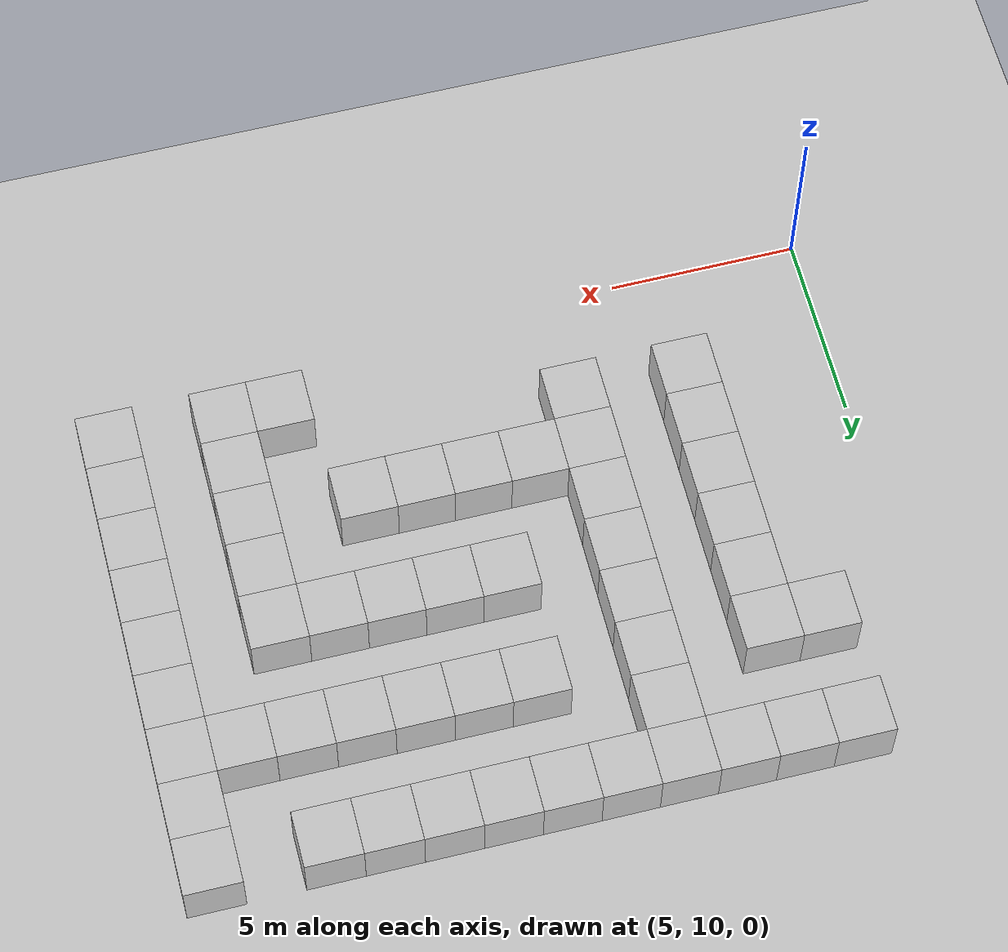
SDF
<sdf version="1.9">
 <world name="maze_world">
  <include><uri>https://fuel.gazebosim.org/1.0/OpenRobotics/models/Sun</uri></include>
  <include><uri>https://fuel.gazebosim.org/1.0/OpenRobotics/models/Ground Plane</uri></include>
  <model name="wall_13_8">
   <static>true</static>
   <pose>19.5 12 0.75 0 0 0</pose>
   <link name="link">
    <collision name="collision"><geometry><box><size>1.5 1.5 1.5</size></box></geometry></collision>
    <visual name="visual">
     <geometry><box><size>1.5 1.5 1.5</size></box></geometry>
     <material>
      <ambient>0.8 0.8 0.8 1</ambient>
      <diffuse>0.8 0.8 0.8 1</diffuse>
      <pbr>
       <metal>
        <albedo_map>file:///home/max/Repos/DHBW-Robotik/maze_runner_ws/src/maze_runner_gazebo/textures/simple_box.png</albedo_map>
        <roughness>0.9</roughness>
       </metal>
      </pbr>
     </material>
    </visual>
   </link>
  </model>
  <model name="wall_14_8">
   <static>true</static>
   <pose>21 12 0.75 0 0 0</pose>
   <link name="link">
    <collision name="collision"><geometry><box><size>1.5 1.5 1.5</size></box></geometry></collision>
    <visual name="visual">
     <geometry><box><size>1.5 1.5 1.5</size></box></geometry>
     <material>
      <ambient>0.8 0.8 0.8 1</ambient>
      <diffuse>0.8 0.8 0.8 1</diffuse>
      <pbr>
       <metal>
        <albedo_map>file:///home/max/Repos/DHBW-Robotik/maze_runner_ws/src/maze_runner_gazebo/textures/simple_box.png</albedo_map>
        <roughness>0.9</roughness>
       </metal>
      </pbr>
     </material>
    </visual>
   </link>
  </model>
  <model name="wall_16_8">
   <static>true</static>
   <pose>24 12 0.75 0 0 0</pose>
   <link name="link">
    <collision name="collision"><geometry><box><size>1.5 1.5 1.5</size></box></geometry></collision>
    <visual name="visual">
     <geometry><box><size>1.5 1.5 1.5</size></box></geometry>
     <material>
      <ambient>0.8 0.8 0.8 1</ambient>
      <diffuse>0.8 0.8 0.8 1</diffuse>
      <pbr>
       <metal>
        <albedo_map>file:///home/max/Repos/DHBW-Robotik/maze_runner_ws/src/maze_runner_gazebo/textures/simple_box.png</albedo_map>
        <roughness>0.9</roughness>
       </metal>
      </pbr>
     </material>
    </visual>
   </link>
  </model>
  <model name="wall_6_9">
   <static>true</static>
   <pose>9 13.5 0.75 0 0 0</pose>
   <link name="link">
    <collision name="collision"><geometry><box><size>1.5 1.5 1.5</size></box></geometry></collision>
    <visual name="visual">
     <geometry><box><size>1.5 1.5 1.5</size></box></geometry>
     <material>
      <ambient>0.8 0.8 0.8 1</ambient>
      <diffuse>0.8 0.8 0.8 1</diffuse>
      <pbr>
       <metal>
        <albedo_map>file:///home/max/Repos/DHBW-Robotik/maze_runner_ws/src/maze_runner_gazebo/textures/simple_box.png</albedo_map>
        <roughness>0.9</roughness>
       </metal>
      </pbr>
     </material>
    </visual>
   </link>
  </model>
  <model name="wall_8_9">
   <static>true</static>
   <pose>12 13.5 0.75 0 0 0</pose>
   <link name="link">
    <collision name="collision"><geometry><box><size>1.5 1.5 1.5</size></box></geometry></collision>
    <visual name="visual">
     <geometry><box><size>1.5 1.5 1.5</size></box></geometry>
     <material>
      <ambient>0.8 0.8 0.8 1</ambient>
      <diffuse>0.8 0.8 0.8 1</diffuse>
      <pbr>
       <metal>
        <albedo_map>file:///home/max/Repos/DHBW-Robotik/maze_runner_ws/src/maze_runner_gazebo/textures/simple_box.png</albedo_map>
        <roughness>0.9</roughness>
       </metal>
      </pbr>
     </material>
    </visual>
   </link>
  </model>
  <model name="wall_14_9">
   <static>true</static>
   <pose>21 13.5 0.75 0 0 0</pose>
   <link name="link">
    <collision name="collision"><geometry><box><size>1.5 1.5 1.5</size></box></geometry></collision>
    <visual name="visual">
     <geometry><box><size>1.5 1.5 1.5</size></box></geometry>
     <material>
      <ambient>0.8 0.8 0.8 1</ambient>
      <diffuse>0.8 0.8 0.8 1</diffuse>
      <pbr>
       <metal>
        <albedo_map>file:///home/max/Repos/DHBW-Robotik/maze_runner_ws/src/maze_runner_gazebo/textures/simple_box.png</albedo_map>
        <roughness>0.9</roughness>
       </metal>
      </pbr>
     </material>
    </visual>
   </link>
  </model>
  <model name="wall_16_9">
   <static>true</static>
   <pose>24 13.5 0.75 0 0 0</pose>
   <link name="link">
    <collision name="collision"><geometry><box><size>1.5 1.5 1.5</size></box></geometry></collision>
    <visual name="visual">
     <geometry><box><size>1.5 1.5 1.5</size></box></geometry>
     <material>
      <ambient>0.8 0.8 0.8 1</ambient>
      <diffuse>0.8 0.8 0.8 1</diffuse>
      <pbr>
       <metal>
        <albedo_map>file:///home/max/Repos/DHBW-Robotik/maze_runner_ws/src/maze_runner_gazebo/textures/simple_box.png</albedo_map>
        <roughness>0.9</roughness>
       </metal>
      </pbr>
     </material>
    </visual>
   </link>
  </model>
  <model name="wall_6_10">
   <static>true</static>
   <pose>9 15 0.75 0 0 0</pose>
   <link name="link">
    <collision name="collision"><geometry><box><size>1.5 1.5 1.5</size></box></geometry></collision>
    <visual name="visual">
     <geometry><box><size>1.5 1.5 1.5</size></box></geometry>
     <material>
      <ambient>0.8 0.8 0.8 1</ambient>
      <diffuse>0.8 0.8 0.8 1</diffuse>
      <pbr>
       <metal>
        <albedo_map>file:///home/max/Repos/DHBW-Robotik/maze_runner_ws/src/maze_runner_gazebo/textures/simple_box.png</albedo_map>
        <roughness>0.9</roughness>
       </metal>
      </pbr>
     </material>
    </visual>
   </link>
  </model>
  <model name="wall_8_10">
   <static>true</static>
   <pose>12 15 0.75 0 0 0</pose>
   <link name="link">
    <collision name="collision"><geometry><box><size>1.5 1.5 1.5</size></box></geometry></collision>
    <visual name="visual">
     <geometry><box><size>1.5 1.5 1.5</size></box></geometry>
     <material>
      <ambient>0.8 0.8 0.8 1</ambient>
      <diffuse>0.8 0.8 0.8 1</diffuse>
      <pbr>
       <metal>
        <albedo_map>file:///home/max/Repos/DHBW-Robotik/maze_runner_ws/src/maze_runner_gazebo/textures/simple_box.png</albedo_map>
        <roughness>0.9</roughness>
       </metal>
      </pbr>
     </material>
    </visual>
   </link>
  </model>
  <model name="wall_9_10">
   <static>true</static>
   <pose>13.5 15 0.75 0 0 0</pose>
   <link name="link">
    <collision name="collision"><geometry><box><size>1.5 1.5 1.5</size></box></geometry></collision>
    <visual name="visual">
     <geometry><box><size>1.5 1.5 1.5</size></box></geometry>
     <material>
      <ambient>0.8 0.8 0.8 1</ambient>
      <diffuse>0.8 0.8 0.8 1</diffuse>
      <pbr>
       <metal>
        <albedo_map>file:///home/max/Repos/DHBW-Robotik/maze_runner_ws/src/maze_runner_gazebo/textures/simple_box.png</albedo_map>
        <roughness>0.9</roughness>
       </metal>
      </pbr>
     </material>
    </visual>
   </link>
  </model>
  <model name="wall_10_10">
   <static>true</static>
   <pose>15 15 0.75 0 0 0</pose>
   <link name="link">
    <collision name="collision"><geometry><box><size>1.5 1.5 1.5</size></box></geometry></collision>
    <visual name="visual">
     <geometry><box><size>1.5 1.5 1.5</size></box></geometry>
     <material>
      <ambient>0.8 0.8 0.8 1</ambient>
      <diffuse>0.8 0.8 0.8 1</diffuse>
      <pbr>
       <metal>
        <albedo_map>file:///home/max/Repos/DHBW-Robotik/maze_runner_ws/src/maze_runner_gazebo/textures/simple_box.png</albedo_map>
        <roughness>0.9</roughness>
       </metal>
      </pbr>
     </material>
    </visual>
   </link>
  </model>
  <model name="wall_11_10">
   <static>true</static>
   <pose>16.5 15 0.75 0 0 0</pose>
   <link name="link">
    <collision name="collision"><geometry><box><size>1.5 1.5 1.5</size></box></geometry></collision>
    <visual name="visual">
     <geometry><box><size>1.5 1.5 1.5</size></box></geometry>
     <material>
      <ambient>0.8 0.8 0.8 1</ambient>
      <diffuse>0.8 0.8 0.8 1</diffuse>
      <pbr>
       <metal>
        <albedo_map>file:///home/max/Repos/DHBW-Robotik/maze_runner_ws/src/maze_runner_gazebo/textures/simple_box.png</albedo_map>
        <roughness>0.9</roughness>
       </metal>
      </pbr>
     </material>
    </visual>
   </link>
  </model>
  <model name="wall_12_10">
   <static>true</static>
   <pose>18 15 0.75 0 0 0</pose>
   <link name="link">
    <collision name="collision"><geometry><box><size>1.5 1.5 1.5</size></box></geometry></collision>
    <visual name="visual">
     <geometry><box><size>1.5 1.5 1.5</size></box></geometry>
     <material>
      <ambient>0.8 0.8 0.8 1</ambient>
      <diffuse>0.8 0.8 0.8 1</diffuse>
      <pbr>
       <metal>
        <albedo_map>file:///home/max/Repos/DHBW-Robotik/maze_runner_ws/src/maze_runner_gazebo/textures/simple_box.png</albedo_map>
        <roughness>0.9</roughness>
       </metal>
      </pbr>
     </material>
    </visual>
   </link>
  </model>
  <model name="wall_14_10">
   <static>true</static>
   <pose>21 15 0.75 0 0 0</pose>
   <link name="link">
    <collision name="collision"><geometry><box><size>1.5 1.5 1.5</size></box></geometry></collision>
    <visual name="visual">
     <geometry><box><size>1.5 1.5 1.5</size></box></geometry>
     <material>
      <ambient>0.8 0.8 0.8 1</ambient>
      <diffuse>0.8 0.8 0.8 1</diffuse>
      <pbr>
       <metal>
        <albedo_map>file:///home/max/Repos/DHBW-Robotik/maze_runner_ws/src/maze_runner_gazebo/textures/simple_box.png</albedo_map>
        <roughness>0.9</roughness>
       </metal>
      </pbr>
     </material>
    </visual>
   </link>
  </model>
  <model name="wall_16_10">
   <static>true</static>
   <pose>24 15 0.75 0 0 0</pose>
   <link name="link">
    <collision name="collision"><geometry><box><size>1.5 1.5 1.5</size></box></geometry></collision>
    <visual name="visual">
     <geometry><box><size>1.5 1.5 1.5</size></box></geometry>
     <material>
      <ambient>0.8 0.8 0.8 1</ambient>
      <diffuse>0.8 0.8 0.8 1</diffuse>
      <pbr>
       <metal>
        <albedo_map>file:///home/max/Repos/DHBW-Robotik/maze_runner_ws/src/maze_runner_gazebo/textures/simple_box.png</albedo_map>
        <roughness>0.9</roughness>
       </metal>
      </pbr>
     </material>
    </visual>
   </link>
  </model>
  <model name="wall_6_11">
   <static>true</static>
   <pose>9 16.5 0.75 0 0 0</pose>
   <link name="link">
    <collision name="collision"><geometry><box><size>1.5 1.5 1.5</size></box></geometry></collision>
    <visual name="visual">
     <geometry><box><size>1.5 1.5 1.5</size></box></geometry>
     <material>
      <ambient>0.8 0.8 0.8 1</ambient>
      <diffuse>0.8 0.8 0.8 1</diffuse>
      <pbr>
       <metal>
        <albedo_map>file:///home/max/Repos/DHBW-Robotik/maze_runner_ws/src/maze_runner_gazebo/textures/simple_box.png</albedo_map>
        <roughness>0.9</roughness>
       </metal>
      </pbr>
     </material>
    </visual>
   </link>
  </model>
  <model name="wall_8_11">
   <static>true</static>
   <pose>12 16.5 0.75 0 0 0</pose>
   <link name="link">
    <collision name="collision"><geometry><box><size>1.5 1.5 1.5</size></box></geometry></collision>
    <visual name="visual">
     <geometry><box><size>1.5 1.5 1.5</size></box></geometry>
     <material>
      <ambient>0.8 0.8 0.8 1</ambient>
      <diffuse>0.8 0.8 0.8 1</diffuse>
      <pbr>
       <metal>
        <albedo_map>file:///home/max/Repos/DHBW-Robotik/maze_runner_ws/src/maze_runner_gazebo/textures/simple_box.png</albedo_map>
        <roughness>0.9</roughness>
       </metal>
      </pbr>
     </material>
    </visual>
   </link>
  </model>
  <model name="wall_14_11">
   <static>true</static>
   <pose>21 16.5 0.75 0 0 0</pose>
   <link name="link">
    <collision name="collision"><geometry><box><size>1.5 1.5 1.5</size></box></geometry></collision>
    <visual name="visual">
     <geometry><box><size>1.5 1.5 1.5</size></box></geometry>
     <material>
      <ambient>0.8 0.8 0.8 1</ambient>
      <diffuse>0.8 0.8 0.8 1</diffuse>
      <pbr>
       <metal>
        <albedo_map>file:///home/max/Repos/DHBW-Robotik/maze_runner_ws/src/maze_runner_gazebo/textures/simple_box.png</albedo_map>
        <roughness>0.9</roughness>
       </metal>
      </pbr>
     </material>
    </visual>
   </link>
  </model>
  <model name="wall_16_11">
   <static>true</static>
   <pose>24 16.5 0.75 0 0 0</pose>
   <link name="link">
    <collision name="collision"><geometry><box><size>1.5 1.5 1.5</size></box></geometry></collision>
    <visual name="visual">
     <geometry><box><size>1.5 1.5 1.5</size></box></geometry>
     <material>
      <ambient>0.8 0.8 0.8 1</ambient>
      <diffuse>0.8 0.8 0.8 1</diffuse>
      <pbr>
       <metal>
        <albedo_map>file:///home/max/Repos/DHBW-Robotik/maze_runner_ws/src/maze_runner_gazebo/textures/simple_box.png</albedo_map>
        <roughness>0.9</roughness>
       </metal>
      </pbr>
     </material>
    </visual>
   </link>
  </model>
  <model name="wall_6_12">
   <static>true</static>
   <pose>9 18 0.75 0 0 0</pose>
   <link name="link">
    <collision name="collision"><geometry><box><size>1.5 1.5 1.5</size></box></geometry></collision>
    <visual name="visual">
     <geometry><box><size>1.5 1.5 1.5</size></box></geometry>
     <material>
      <ambient>0.8 0.8 0.8 1</ambient>
      <diffuse>0.8 0.8 0.8 1</diffuse>
      <pbr>
       <metal>
        <albedo_map>file:///home/max/Repos/DHBW-Robotik/maze_runner_ws/src/maze_runner_gazebo/textures/simple_box.png</albedo_map>
        <roughness>0.9</roughness>
       </metal>
      </pbr>
     </material>
    </visual>
   </link>
  </model>
  <model name="wall_8_12">
   <static>true</static>
   <pose>12 18 0.75 0 0 0</pose>
   <link name="link">
    <collision name="collision"><geometry><box><size>1.5 1.5 1.5</size></box></geometry></collision>
    <visual name="visual">
     <geometry><box><size>1.5 1.5 1.5</size></box></geometry>
     <material>
      <ambient>0.8 0.8 0.8 1</ambient>
      <diffuse>0.8 0.8 0.8 1</diffuse>
      <pbr>
       <metal>
        <albedo_map>file:///home/max/Repos/DHBW-Robotik/maze_runner_ws/src/maze_runner_gazebo/textures/simple_box.png</albedo_map>
        <roughness>0.9</roughness>
       </metal>
      </pbr>
     </material>
    </visual>
   </link>
  </model>
  <model name="wall_10_12">
   <static>true</static>
   <pose>15 18 0.75 0 0 0</pose>
   <link name="link">
    <collision name="collision"><geometry><box><size>1.5 1.5 1.5</size></box></geometry></collision>
    <visual name="visual">
     <geometry><box><size>1.5 1.5 1.5</size></box></geometry>
     <material>
      <ambient>0.8 0.8 0.8 1</ambient>
      <diffuse>0.8 0.8 0.8 1</diffuse>
      <pbr>
       <metal>
        <albedo_map>file:///home/max/Repos/DHBW-Robotik/maze_runner_ws/src/maze_runner_gazebo/textures/simple_box.png</albedo_map>
        <roughness>0.9</roughness>
       </metal>
      </pbr>
     </material>
    </visual>
   </link>
  </model>
  <model name="wall_11_12">
   <static>true</static>
   <pose>16.5 18 0.75 0 0 0</pose>
   <link name="link">
    <collision name="collision"><geometry><box><size>1.5 1.5 1.5</size></box></geometry></collision>
    <visual name="visual">
     <geometry><box><size>1.5 1.5 1.5</size></box></geometry>
     <material>
      <ambient>0.8 0.8 0.8 1</ambient>
      <diffuse>0.8 0.8 0.8 1</diffuse>
      <pbr>
       <metal>
        <albedo_map>file:///home/max/Repos/DHBW-Robotik/maze_runner_ws/src/maze_runner_gazebo/textures/simple_box.png</albedo_map>
        <roughness>0.9</roughness>
       </metal>
      </pbr>
     </material>
    </visual>
   </link>
  </model>
  <model name="wall_12_12">
   <static>true</static>
   <pose>18 18 0.75 0 0 0</pose>
   <link name="link">
    <collision name="collision"><geometry><box><size>1.5 1.5 1.5</size></box></geometry></collision>
    <visual name="visual">
     <geometry><box><size>1.5 1.5 1.5</size></box></geometry>
     <material>
      <ambient>0.8 0.8 0.8 1</ambient>
      <diffuse>0.8 0.8 0.8 1</diffuse>
      <pbr>
       <metal>
        <albedo_map>file:///home/max/Repos/DHBW-Robotik/maze_runner_ws/src/maze_runner_gazebo/textures/simple_box.png</albedo_map>
        <roughness>0.9</roughness>
       </metal>
      </pbr>
     </material>
    </visual>
   </link>
  </model>
  <model name="wall_13_12">
   <static>true</static>
   <pose>19.5 18 0.75 0 0 0</pose>
   <link name="link">
    <collision name="collision"><geometry><box><size>1.5 1.5 1.5</size></box></geometry></collision>
    <visual name="visual">
     <geometry><box><size>1.5 1.5 1.5</size></box></geometry>
     <material>
      <ambient>0.8 0.8 0.8 1</ambient>
      <diffuse>0.8 0.8 0.8 1</diffuse>
      <pbr>
       <metal>
        <albedo_map>file:///home/max/Repos/DHBW-Robotik/maze_runner_ws/src/maze_runner_gazebo/textures/simple_box.png</albedo_map>
        <roughness>0.9</roughness>
       </metal>
      </pbr>
     </material>
    </visual>
   </link>
  </model>
  <model name="wall_14_12">
   <static>true</static>
   <pose>21 18 0.75 0 0 0</pose>
   <link name="link">
    <collision name="collision"><geometry><box><size>1.5 1.5 1.5</size></box></geometry></collision>
    <visual name="visual">
     <geometry><box><size>1.5 1.5 1.5</size></box></geometry>
     <material>
      <ambient>0.8 0.8 0.8 1</ambient>
      <diffuse>0.8 0.8 0.8 1</diffuse>
      <pbr>
       <metal>
        <albedo_map>file:///home/max/Repos/DHBW-Robotik/maze_runner_ws/src/maze_runner_gazebo/textures/simple_box.png</albedo_map>
        <roughness>0.9</roughness>
       </metal>
      </pbr>
     </material>
    </visual>
   </link>
  </model>
  <model name="wall_16_12">
   <static>true</static>
   <pose>24 18 0.75 0 0 0</pose>
   <link name="link">
    <collision name="collision"><geometry><box><size>1.5 1.5 1.5</size></box></geometry></collision>
    <visual name="visual">
     <geometry><box><size>1.5 1.5 1.5</size></box></geometry>
     <material>
      <ambient>0.8 0.8 0.8 1</ambient>
      <diffuse>0.8 0.8 0.8 1</diffuse>
      <pbr>
       <metal>
        <albedo_map>file:///home/max/Repos/DHBW-Robotik/maze_runner_ws/src/maze_runner_gazebo/textures/simple_box.png</albedo_map>
        <roughness>0.9</roughness>
       </metal>
      </pbr>
     </material>
    </visual>
   </link>
  </model>
  <model name="wall_6_13">
   <static>true</static>
   <pose>9 19.5 0.75 0 0 0</pose>
   <link name="link">
    <collision name="collision"><geometry><box><size>1.5 1.5 1.5</size></box></geometry></collision>
    <visual name="visual">
     <geometry><box><size>1.5 1.5 1.5</size></box></geometry>
     <material>
      <ambient>0.8 0.8 0.8 1</ambient>
      <diffuse>0.8 0.8 0.8 1</diffuse>
      <pbr>
       <metal>
        <albedo_map>file:///home/max/Repos/DHBW-Robotik/maze_runner_ws/src/maze_runner_gazebo/textures/simple_box.png</albedo_map>
        <roughness>0.9</roughness>
       </metal>
      </pbr>
     </material>
    </visual>
   </link>
  </model>
  <model name="wall_8_13">
   <static>true</static>
   <pose>12 19.5 0.75 0 0 0</pose>
   <link name="link">
    <collision name="collision"><geometry><box><size>1.5 1.5 1.5</size></box></geometry></collision>
    <visual name="visual">
     <geometry><box><size>1.5 1.5 1.5</size></box></geometry>
     <material>
      <ambient>0.8 0.8 0.8 1</ambient>
      <diffuse>0.8 0.8 0.8 1</diffuse>
      <pbr>
       <metal>
        <albedo_map>file:///home/max/Repos/DHBW-Robotik/maze_runner_ws/src/maze_runner_gazebo/textures/simple_box.png</albedo_map>
        <roughness>0.9</roughness>
       </metal>
      </pbr>
     </material>
    </visual>
   </link>
  </model>
  <model name="wall_16_13">
   <static>true</static>
   <pose>24 19.5 0.75 0 0 0</pose>
   <link name="link">
    <collision name="collision"><geometry><box><size>1.5 1.5 1.5</size></box></geometry></collision>
    <visual name="visual">
     <geometry><box><size>1.5 1.5 1.5</size></box></geometry>
     <material>
      <ambient>0.8 0.8 0.8 1</ambient>
      <diffuse>0.8 0.8 0.8 1</diffuse>
      <pbr>
       <metal>
        <albedo_map>file:///home/max/Repos/DHBW-Robotik/maze_runner_ws/src/maze_runner_gazebo/textures/simple_box.png</albedo_map>
        <roughness>0.9</roughness>
       </metal>
      </pbr>
     </material>
    </visual>
   </link>
  </model>
  <model name="wall_5_14">
   <static>true</static>
   <pose>7.5 21 0.75 0 0 0</pose>
   <link name="link">
    <collision name="collision"><geometry><box><size>1.5 1.5 1.5</size></box></geometry></collision>
    <visual name="visual">
     <geometry><box><size>1.5 1.5 1.5</size></box></geometry>
     <material>
      <ambient>0.8 0.8 0.8 1</ambient>
      <diffuse>0.8 0.8 0.8 1</diffuse>
      <pbr>
       <metal>
        <albedo_map>file:///home/max/Repos/DHBW-Robotik/maze_runner_ws/src/maze_runner_gazebo/textures/simple_box.png</albedo_map>
        <roughness>0.9</roughness>
       </metal>
      </pbr>
     </material>
    </visual>
   </link>
  </model>
  <model name="wall_6_14">
   <static>true</static>
   <pose>9 21 0.75 0 0 0</pose>
   <link name="link">
    <collision name="collision"><geometry><box><size>1.5 1.5 1.5</size></box></geometry></collision>
    <visual name="visual">
     <geometry><box><size>1.5 1.5 1.5</size></box></geometry>
     <material>
      <ambient>0.8 0.8 0.8 1</ambient>
      <diffuse>0.8 0.8 0.8 1</diffuse>
      <pbr>
       <metal>
        <albedo_map>file:///home/max/Repos/DHBW-Robotik/maze_runner_ws/src/maze_runner_gazebo/textures/simple_box.png</albedo_map>
        <roughness>0.9</roughness>
       </metal>
      </pbr>
     </material>
    </visual>
   </link>
  </model>
  <model name="wall_8_14">
   <static>true</static>
   <pose>12 21 0.75 0 0 0</pose>
   <link name="link">
    <collision name="collision"><geometry><box><size>1.5 1.5 1.5</size></box></geometry></collision>
    <visual name="visual">
     <geometry><box><size>1.5 1.5 1.5</size></box></geometry>
     <material>
      <ambient>0.8 0.8 0.8 1</ambient>
      <diffuse>0.8 0.8 0.8 1</diffuse>
      <pbr>
       <metal>
        <albedo_map>file:///home/max/Repos/DHBW-Robotik/maze_runner_ws/src/maze_runner_gazebo/textures/simple_box.png</albedo_map>
        <roughness>0.9</roughness>
       </metal>
      </pbr>
     </material>
    </visual>
   </link>
  </model>
  <model name="wall_10_14">
   <static>true</static>
   <pose>15 21 0.75 0 0 0</pose>
   <link name="link">
    <collision name="collision"><geometry><box><size>1.5 1.5 1.5</size></box></geometry></collision>
    <visual name="visual">
     <geometry><box><size>1.5 1.5 1.5</size></box></geometry>
     <material>
      <ambient>0.8 0.8 0.8 1</ambient>
      <diffuse>0.8 0.8 0.8 1</diffuse>
      <pbr>
       <metal>
        <albedo_map>file:///home/max/Repos/DHBW-Robotik/maze_runner_ws/src/maze_runner_gazebo/textures/simple_box.png</albedo_map>
        <roughness>0.9</roughness>
       </metal>
      </pbr>
     </material>
    </visual>
   </link>
  </model>
  <model name="wall_11_14">
   <static>true</static>
   <pose>16.5 21 0.75 0 0 0</pose>
   <link name="link">
    <collision name="collision"><geometry><box><size>1.5 1.5 1.5</size></box></geometry></collision>
    <visual name="visual">
     <geometry><box><size>1.5 1.5 1.5</size></box></geometry>
     <material>
      <ambient>0.8 0.8 0.8 1</ambient>
      <diffuse>0.8 0.8 0.8 1</diffuse>
      <pbr>
       <metal>
        <albedo_map>file:///home/max/Repos/DHBW-Robotik/maze_runner_ws/src/maze_runner_gazebo/textures/simple_box.png</albedo_map>
        <roughness>0.9</roughness>
       </metal>
      </pbr>
     </material>
    </visual>
   </link>
  </model>
  <model name="wall_12_14">
   <static>true</static>
   <pose>18 21 0.75 0 0 0</pose>
   <link name="link">
    <collision name="collision"><geometry><box><size>1.5 1.5 1.5</size></box></geometry></collision>
    <visual name="visual">
     <geometry><box><size>1.5 1.5 1.5</size></box></geometry>
     <material>
      <ambient>0.8 0.8 0.8 1</ambient>
      <diffuse>0.8 0.8 0.8 1</diffuse>
      <pbr>
       <metal>
        <albedo_map>file:///home/max/Repos/DHBW-Robotik/maze_runner_ws/src/maze_runner_gazebo/textures/simple_box.png</albedo_map>
        <roughness>0.9</roughness>
       </metal>
      </pbr>
     </material>
    </visual>
   </link>
  </model>
  <model name="wall_13_14">
   <static>true</static>
   <pose>19.5 21 0.75 0 0 0</pose>
   <link name="link">
    <collision name="collision"><geometry><box><size>1.5 1.5 1.5</size></box></geometry></collision>
    <visual name="visual">
     <geometry><box><size>1.5 1.5 1.5</size></box></geometry>
     <material>
      <ambient>0.8 0.8 0.8 1</ambient>
      <diffuse>0.8 0.8 0.8 1</diffuse>
      <pbr>
       <metal>
        <albedo_map>file:///home/max/Repos/DHBW-Robotik/maze_runner_ws/src/maze_runner_gazebo/textures/simple_box.png</albedo_map>
        <roughness>0.9</roughness>
       </metal>
      </pbr>
     </material>
    </visual>
   </link>
  </model>
  <model name="wall_14_14">
   <static>true</static>
   <pose>21 21 0.75 0 0 0</pose>
   <link name="link">
    <collision name="collision"><geometry><box><size>1.5 1.5 1.5</size></box></geometry></collision>
    <visual name="visual">
     <geometry><box><size>1.5 1.5 1.5</size></box></geometry>
     <material>
      <ambient>0.8 0.8 0.8 1</ambient>
      <diffuse>0.8 0.8 0.8 1</diffuse>
      <pbr>
       <metal>
        <albedo_map>file:///home/max/Repos/DHBW-Robotik/maze_runner_ws/src/maze_runner_gazebo/textures/simple_box.png</albedo_map>
        <roughness>0.9</roughness>
       </metal>
      </pbr>
     </material>
    </visual>
   </link>
  </model>
  <model name="wall_15_14">
   <static>true</static>
   <pose>22.5 21 0.75 0 0 0</pose>
   <link name="link">
    <collision name="collision"><geometry><box><size>1.5 1.5 1.5</size></box></geometry></collision>
    <visual name="visual">
     <geometry><box><size>1.5 1.5 1.5</size></box></geometry>
     <material>
      <ambient>0.8 0.8 0.8 1</ambient>
      <diffuse>0.8 0.8 0.8 1</diffuse>
      <pbr>
       <metal>
        <albedo_map>file:///home/max/Repos/DHBW-Robotik/maze_runner_ws/src/maze_runner_gazebo/textures/simple_box.png</albedo_map>
        <roughness>0.9</roughness>
       </metal>
      </pbr>
     </material>
    </visual>
   </link>
  </model>
  <model name="wall_16_14">
   <static>true</static>
   <pose>24 21 0.75 0 0 0</pose>
   <link name="link">
    <collision name="collision"><geometry><box><size>1.5 1.5 1.5</size></box></geometry></collision>
    <visual name="visual">
     <geometry><box><size>1.5 1.5 1.5</size></box></geometry>
     <material>
      <ambient>0.8 0.8 0.8 1</ambient>
      <diffuse>0.8 0.8 0.8 1</diffuse>
      <pbr>
       <metal>
        <albedo_map>file:///home/max/Repos/DHBW-Robotik/maze_runner_ws/src/maze_runner_gazebo/textures/simple_box.png</albedo_map>
        <roughness>0.9</roughness>
       </metal>
      </pbr>
     </material>
    </visual>
   </link>
  </model>
  <model name="wall_8_15">
   <static>true</static>
   <pose>12 22.5 0.75 0 0 0</pose>
   <link name="link">
    <collision name="collision"><geometry><box><size>1.5 1.5 1.5</size></box></geometry></collision>
    <visual name="visual">
     <geometry><box><size>1.5 1.5 1.5</size></box></geometry>
     <material>
      <ambient>0.8 0.8 0.8 1</ambient>
      <diffuse>0.8 0.8 0.8 1</diffuse>
      <pbr>
       <metal>
        <albedo_map>file:///home/max/Repos/DHBW-Robotik/maze_runner_ws/src/maze_runner_gazebo/textures/simple_box.png</albedo_map>
        <roughness>0.9</roughness>
       </metal>
      </pbr>
     </material>
    </visual>
   </link>
  </model>
  <model name="wall_16_15">
   <static>true</static>
   <pose>24 22.5 0.75 0 0 0</pose>
   <link name="link">
    <collision name="collision"><geometry><box><size>1.5 1.5 1.5</size></box></geometry></collision>
    <visual name="visual">
     <geometry><box><size>1.5 1.5 1.5</size></box></geometry>
     <material>
      <ambient>0.8 0.8 0.8 1</ambient>
      <diffuse>0.8 0.8 0.8 1</diffuse>
      <pbr>
       <metal>
        <albedo_map>file:///home/max/Repos/DHBW-Robotik/maze_runner_ws/src/maze_runner_gazebo/textures/simple_box.png</albedo_map>
        <roughness>0.9</roughness>
       </metal>
      </pbr>
     </material>
    </visual>
   </link>
  </model>
  <model name="wall_5_16">
   <static>true</static>
   <pose>7.5 24 0.75 0 0 0</pose>
   <link name="link">
    <collision name="collision"><geometry><box><size>1.5 1.5 1.5</size></box></geometry></collision>
    <visual name="visual">
     <geometry><box><size>1.5 1.5 1.5</size></box></geometry>
     <material>
      <ambient>0.8 0.8 0.8 1</ambient>
      <diffuse>0.8 0.8 0.8 1</diffuse>
      <pbr>
       <metal>
        <albedo_map>file:///home/max/Repos/DHBW-Robotik/maze_runner_ws/src/maze_runner_gazebo/textures/simple_box.png</albedo_map>
        <roughness>0.9</roughness>
       </metal>
      </pbr>
     </material>
    </visual>
   </link>
  </model>
  <model name="wall_6_16">
   <static>true</static>
   <pose>9 24 0.75 0 0 0</pose>
   <link name="link">
    <collision name="collision"><geometry><box><size>1.5 1.5 1.5</size></box></geometry></collision>
    <visual name="visual">
     <geometry><box><size>1.5 1.5 1.5</size></box></geometry>
     <material>
      <ambient>0.8 0.8 0.8 1</ambient>
      <diffuse>0.8 0.8 0.8 1</diffuse>
      <pbr>
       <metal>
        <albedo_map>file:///home/max/Repos/DHBW-Robotik/maze_runner_ws/src/maze_runner_gazebo/textures/simple_box.png</albedo_map>
        <roughness>0.9</roughness>
       </metal>
      </pbr>
     </material>
    </visual>
   </link>
  </model>
  <model name="wall_7_16">
   <static>true</static>
   <pose>10.5 24 0.75 0 0 0</pose>
   <link name="link">
    <collision name="collision"><geometry><box><size>1.5 1.5 1.5</size></box></geometry></collision>
    <visual name="visual">
     <geometry><box><size>1.5 1.5 1.5</size></box></geometry>
     <material>
      <ambient>0.8 0.8 0.8 1</ambient>
      <diffuse>0.8 0.8 0.8 1</diffuse>
      <pbr>
       <metal>
        <albedo_map>file:///home/max/Repos/DHBW-Robotik/maze_runner_ws/src/maze_runner_gazebo/textures/simple_box.png</albedo_map>
        <roughness>0.9</roughness>
       </metal>
      </pbr>
     </material>
    </visual>
   </link>
  </model>
  <model name="wall_8_16">
   <static>true</static>
   <pose>12 24 0.75 0 0 0</pose>
   <link name="link">
    <collision name="collision"><geometry><box><size>1.5 1.5 1.5</size></box></geometry></collision>
    <visual name="visual">
     <geometry><box><size>1.5 1.5 1.5</size></box></geometry>
     <material>
      <ambient>0.8 0.8 0.8 1</ambient>
      <diffuse>0.8 0.8 0.8 1</diffuse>
      <pbr>
       <metal>
        <albedo_map>file:///home/max/Repos/DHBW-Robotik/maze_runner_ws/src/maze_runner_gazebo/textures/simple_box.png</albedo_map>
        <roughness>0.9</roughness>
       </metal>
      </pbr>
     </material>
    </visual>
   </link>
  </model>
  <model name="wall_9_16">
   <static>true</static>
   <pose>13.5 24 0.75 0 0 0</pose>
   <link name="link">
    <collision name="collision"><geometry><box><size>1.5 1.5 1.5</size></box></geometry></collision>
    <visual name="visual">
     <geometry><box><size>1.5 1.5 1.5</size></box></geometry>
     <material>
      <ambient>0.8 0.8 0.8 1</ambient>
      <diffuse>0.8 0.8 0.8 1</diffuse>
      <pbr>
       <metal>
        <albedo_map>file:///home/max/Repos/DHBW-Robotik/maze_runner_ws/src/maze_runner_gazebo/textures/simple_box.png</albedo_map>
        <roughness>0.9</roughness>
       </metal>
      </pbr>
     </material>
    </visual>
   </link>
  </model>
  <model name="wall_10_16">
   <static>true</static>
   <pose>15 24 0.75 0 0 0</pose>
   <link name="link">
    <collision name="collision"><geometry><box><size>1.5 1.5 1.5</size></box></geometry></collision>
    <visual name="visual">
     <geometry><box><size>1.5 1.5 1.5</size></box></geometry>
     <material>
      <ambient>0.8 0.8 0.8 1</ambient>
      <diffuse>0.8 0.8 0.8 1</diffuse>
      <pbr>
       <metal>
        <albedo_map>file:///home/max/Repos/DHBW-Robotik/maze_runner_ws/src/maze_runner_gazebo/textures/simple_box.png</albedo_map>
        <roughness>0.9</roughness>
       </metal>
      </pbr>
     </material>
    </visual>
   </link>
  </model>
  <model name="wall_11_16">
   <static>true</static>
   <pose>16.5 24 0.75 0 0 0</pose>
   <link name="link">
    <collision name="collision"><geometry><box><size>1.5 1.5 1.5</size></box></geometry></collision>
    <visual name="visual">
     <geometry><box><size>1.5 1.5 1.5</size></box></geometry>
     <material>
      <ambient>0.8 0.8 0.8 1</ambient>
      <diffuse>0.8 0.8 0.8 1</diffuse>
      <pbr>
       <metal>
        <albedo_map>file:///home/max/Repos/DHBW-Robotik/maze_runner_ws/src/maze_runner_gazebo/textures/simple_box.png</albedo_map>
        <roughness>0.9</roughness>
       </metal>
      </pbr>
     </material>
    </visual>
   </link>
  </model>
  <model name="wall_12_16">
   <static>true</static>
   <pose>18 24 0.75 0 0 0</pose>
   <link name="link">
    <collision name="collision"><geometry><box><size>1.5 1.5 1.5</size></box></geometry></collision>
    <visual name="visual">
     <geometry><box><size>1.5 1.5 1.5</size></box></geometry>
     <material>
      <ambient>0.8 0.8 0.8 1</ambient>
      <diffuse>0.8 0.8 0.8 1</diffuse>
      <pbr>
       <metal>
        <albedo_map>file:///home/max/Repos/DHBW-Robotik/maze_runner_ws/src/maze_runner_gazebo/textures/simple_box.png</albedo_map>
        <roughness>0.9</roughness>
       </metal>
      </pbr>
     </material>
    </visual>
   </link>
  </model>
  <model name="wall_13_16">
   <static>true</static>
   <pose>19.5 24 0.75 0 0 0</pose>
   <link name="link">
    <collision name="collision"><geometry><box><size>1.5 1.5 1.5</size></box></geometry></collision>
    <visual name="visual">
     <geometry><box><size>1.5 1.5 1.5</size></box></geometry>
     <material>
      <ambient>0.8 0.8 0.8 1</ambient>
      <diffuse>0.8 0.8 0.8 1</diffuse>
      <pbr>
       <metal>
        <albedo_map>file:///home/max/Repos/DHBW-Robotik/maze_runner_ws/src/maze_runner_gazebo/textures/simple_box.png</albedo_map>
        <roughness>0.9</roughness>
       </metal>
      </pbr>
     </material>
    </visual>
   </link>
  </model>
  <model name="wall_14_16">
   <static>true</static>
   <pose>21 24 0.75 0 0 0</pose>
   <link name="link">
    <collision name="collision"><geometry><box><size>1.5 1.5 1.5</size></box></geometry></collision>
    <visual name="visual">
     <geometry><box><size>1.5 1.5 1.5</size></box></geometry>
     <material>
      <ambient>0.8 0.8 0.8 1</ambient>
      <diffuse>0.8 0.8 0.8 1</diffuse>
      <pbr>
       <metal>
        <albedo_map>file:///home/max/Repos/DHBW-Robotik/maze_runner_ws/src/maze_runner_gazebo/textures/simple_box.png</albedo_map>
        <roughness>0.9</roughness>
       </metal>
      </pbr>
     </material>
    </visual>
   </link>
  </model>
  <model name="wall_16_16">
   <static>true</static>
   <pose>24 24 0.75 0 0 0</pose>
   <link name="link">
    <collision name="collision"><geometry><box><size>1.5 1.5 1.5</size></box></geometry></collision>
    <visual name="visual">
     <geometry><box><size>1.5 1.5 1.5</size></box></geometry>
     <material>
      <ambient>0.8 0.8 0.8 1</ambient>
      <diffuse>0.8 0.8 0.8 1</diffuse>
      <pbr>
       <metal>
        <albedo_map>file:///home/max/Repos/DHBW-Robotik/maze_runner_ws/src/maze_runner_gazebo/textures/simple_box.png</albedo_map>
        <roughness>0.9</roughness>
       </metal>
      </pbr>
     </material>
    </visual>
   </link>
  </model>
 </world>
</sdf>
